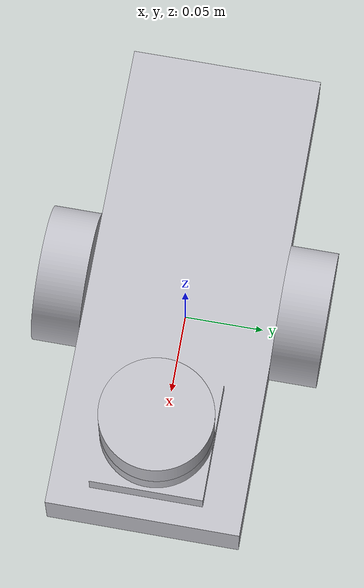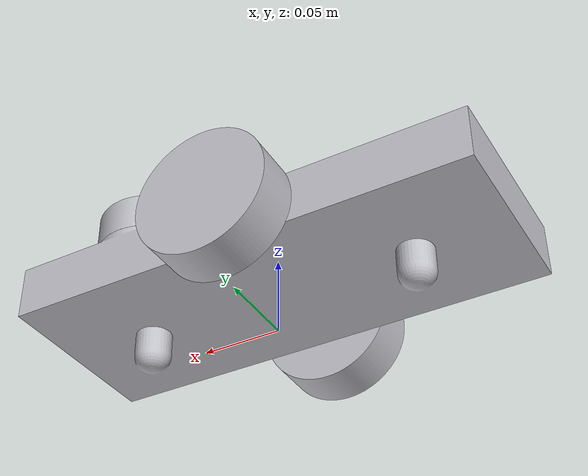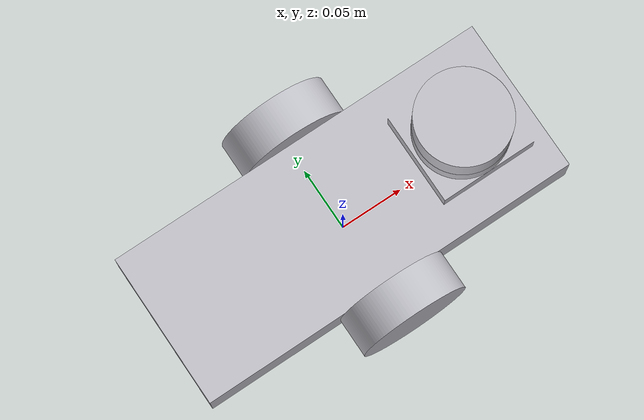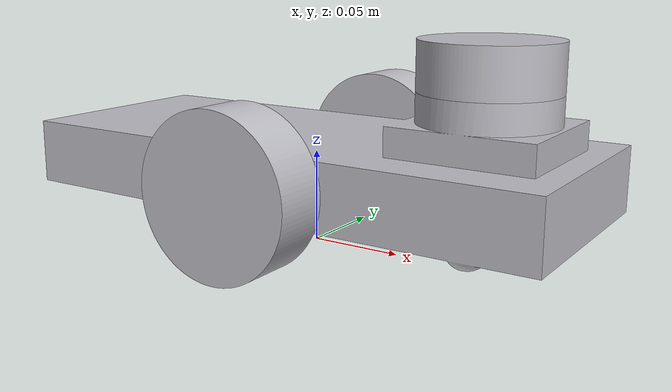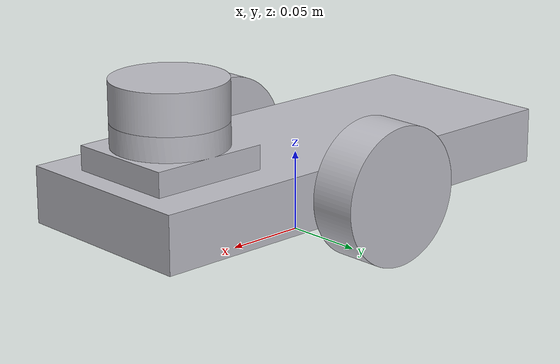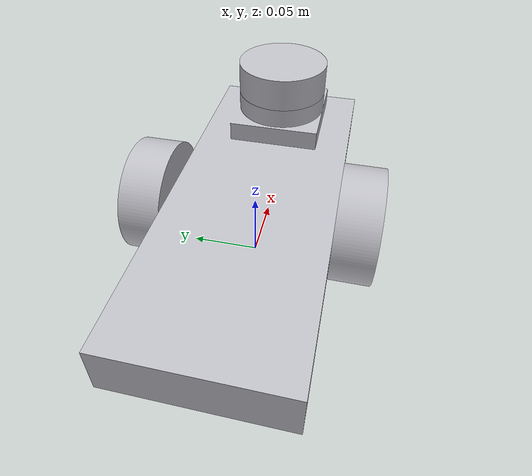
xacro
<?xml version="1.0" ?>
<robot name="rover" xmlns:xacro="http://www.ros.org/wiki/xacro">

<xacro:include filename="$(find rover_description)/urdf/materials.xacro" />
<xacro:include filename="$(find rover_description)/urdf/rover.trans" />
<xacro:include filename="$(find rover_description)/urdf/rover.gazebo" />
<link name="base_link">
  <inertial>
    <origin xyz="0.00950199385364597 -1.0732449358604367e-10 0.04515394376876868" rpy="0 0 0"/>
    <mass value="1.4996367345810235"/>
    <inertia ixx="0.001951" iyy="0.011796" izz="0.013157" ixy="0.0" iyz="0.0" ixz="-0.000409"/>
  </inertial>
  <visual>
    <origin xyz="0 0 0" rpy="0 0 0"/>
    <geometry>
      <mesh filename="package://rover_description/meshes/base_link.stl" scale="0.001 0.001 0.001"/>
    </geometry>
    <material name="silver"/>
  </visual>
  <collision>
    <origin xyz="0 0 0" rpy="0 0 0"/>
    <geometry>
      <mesh filename="package://rover_description/meshes/base_link.stl" scale="0.001 0.001 0.001"/>
    </geometry>
  </collision>
</link>

<link name="left_wheel_1">
  <inertial>
    <origin xyz="-2.0034682007342655e-17 0.015 0.0" rpy="0 0 0"/>
    <mass value="0.15831859828224917"/>
    <inertia ixx="8.3e-05" iyy="0.000143" izz="8.3e-05" ixy="-0.0" iyz="0.0" ixz="0.0"/>
  </inertial>
  <visual>
    <origin xyz="0.0 -0.06 -0.0425" rpy="0 0 0"/>
    <geometry>
      <mesh filename="package://rover_description/meshes/left_wheel_1.stl" scale="0.001 0.001 0.001"/>
    </geometry>
    <material name="silver"/>
  </visual>
  <collision>
    <origin xyz="0.0 -0.06 -0.0425" rpy="0 0 0"/>
    <geometry>
      <mesh filename="package://rover_description/meshes/left_wheel_1.stl" scale="0.001 0.001 0.001"/>
    </geometry>
  </collision>
</link>

<link name="right_wheel_1">
  <inertial>
    <origin xyz="-6.6782273357808864e-18 -0.015 -1.3877787807814457e-17" rpy="0 0 0"/>
    <mass value="0.15831859828224912"/>
    <inertia ixx="8.3e-05" iyy="0.000143" izz="8.3e-05" ixy="0.0" iyz="0.0" ixz="-0.0"/>
  </inertial>
  <visual>
    <origin xyz="0.0 0.06 -0.0425" rpy="0 0 0"/>
    <geometry>
      <mesh filename="package://rover_description/meshes/right_wheel_1.stl" scale="0.001 0.001 0.001"/>
    </geometry>
    <material name="silver"/>
  </visual>
  <collision>
    <origin xyz="0.0 0.06 -0.0425" rpy="0 0 0"/>
    <geometry>
      <mesh filename="package://rover_description/meshes/right_wheel_1.stl" scale="0.001 0.001 0.001"/>
    </geometry>
  </collision>
</link>

<link name="lidar_1">
  <inertial>
    <origin xyz="-4.163336342344337e-17 -7.054769277435655e-10 0.012499999999999997" rpy="0 0 0"/>
    <mass value="0.1269988830213674"/>
    <inertia ixx="4.6e-05" iyy="4.6e-05" izz="7.8e-05" ixy="-0.0" iyz="-0.0" ixz="0.0"/>
  </inertial>
  <visual>
    <origin xyz="-0.0985 0.0 -0.09" rpy="0 0 0"/>
    <geometry>
      <mesh filename="package://rover_description/meshes/lidar_1.stl" scale="0.001 0.001 0.001"/>
    </geometry>
    <material name="silver"/>
  </visual>
  <collision>
    <origin xyz="-0.0985 0.0 -0.09" rpy="0 0 0"/>
    <geometry>
      <mesh filename="package://rover_description/meshes/lidar_1.stl" scale="0.001 0.001 0.001"/>
    </geometry>
  </collision>
</link>

<joint name="Revolute_1" type="continuous">
  <origin xyz="0.0 0.06 0.0425" rpy="0 0 0"/>
  <parent link="base_link"/>
  <child link="left_wheel_1"/>
  <axis xyz="0.0 1.0 0.0"/>
</joint>

<joint name="Revolute_2" type="continuous">
  <origin xyz="0.0 -0.06 0.0425" rpy="0 0 0"/>
  <parent link="base_link"/>
  <child link="right_wheel_1"/>
  <axis xyz="0.0 -1.0 0.0"/>
</joint>

<joint name="Rigid_3" type="fixed">
  <origin xyz="0.0985 0.0 0.09" rpy="0 0 0"/>
  <parent link="base_link"/>
  <child link="lidar_1"/>
</joint>

</robot>

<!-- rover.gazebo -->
<robot name="rover" xmlns:xacro="http://www.ros.org/wiki/xacro" >

<xacro:property name="body_color" value="Gazebo/Silver" />

<gazebo>
  <plugin name="control" filename="libgazebo_ros_control.so"/>
</gazebo>
<gazebo reference="base_link">
  <material>${body_color}</material>
  <mu1>0.2</mu1>
  <mu2>0.2</mu2>
  <selfCollide>true</selfCollide>
  <gravity>true</gravity>
</gazebo>

<gazebo reference="left_wheel_1">
  <material>${body_color}</material>
  <mu1>0.2</mu1>
  <mu2>0.2</mu2>
  <selfCollide>true</selfCollide>
</gazebo>

<gazebo reference="right_wheel_1">
  <material>${body_color}</material>
  <mu1>0.2</mu1>
  <mu2>0.2</mu2>
  <selfCollide>true</selfCollide>
</gazebo>

<gazebo reference="lidar_1">
  <material>${body_color}</material>
  <mu1>0.2</mu1>
  <mu2>0.2</mu2>
  <selfCollide>true</selfCollide>
</gazebo>

</robot>
